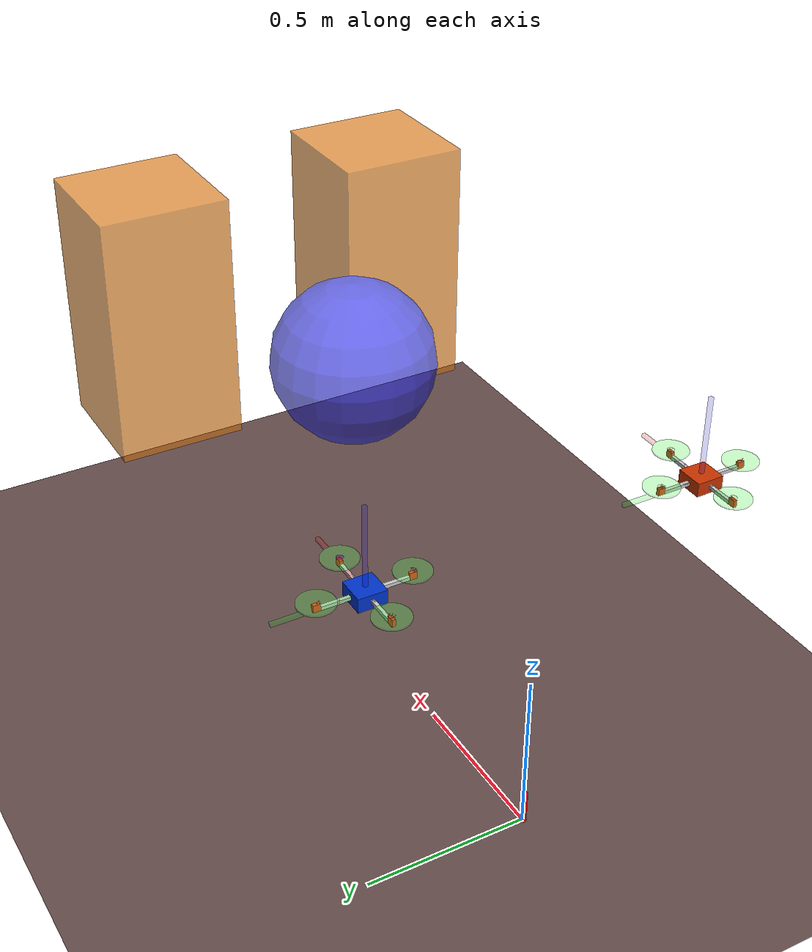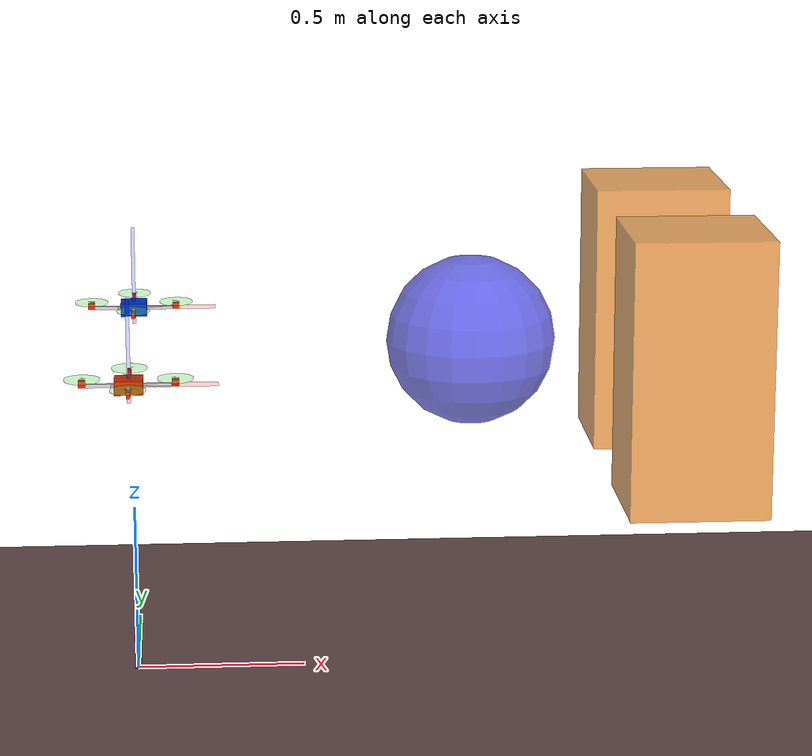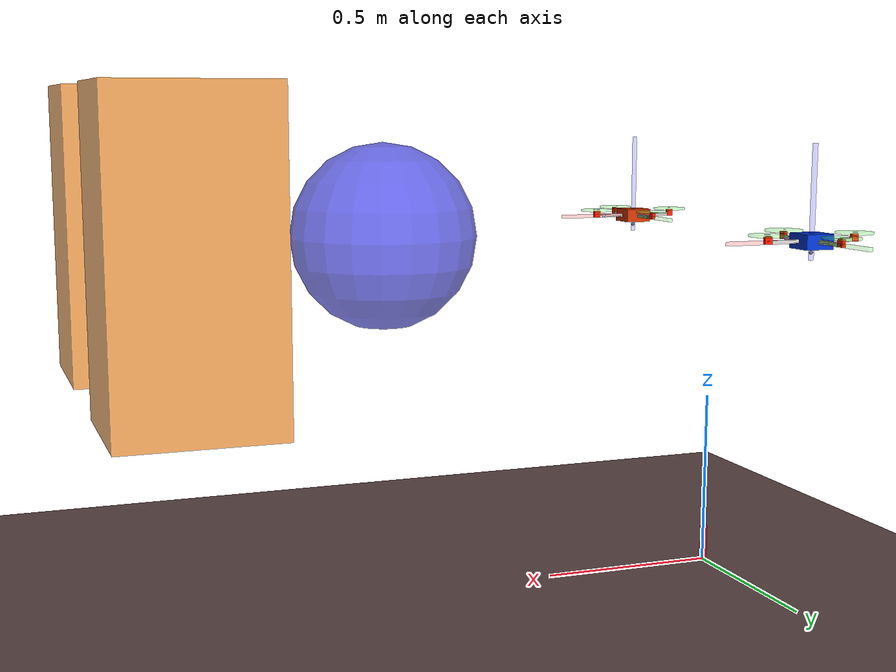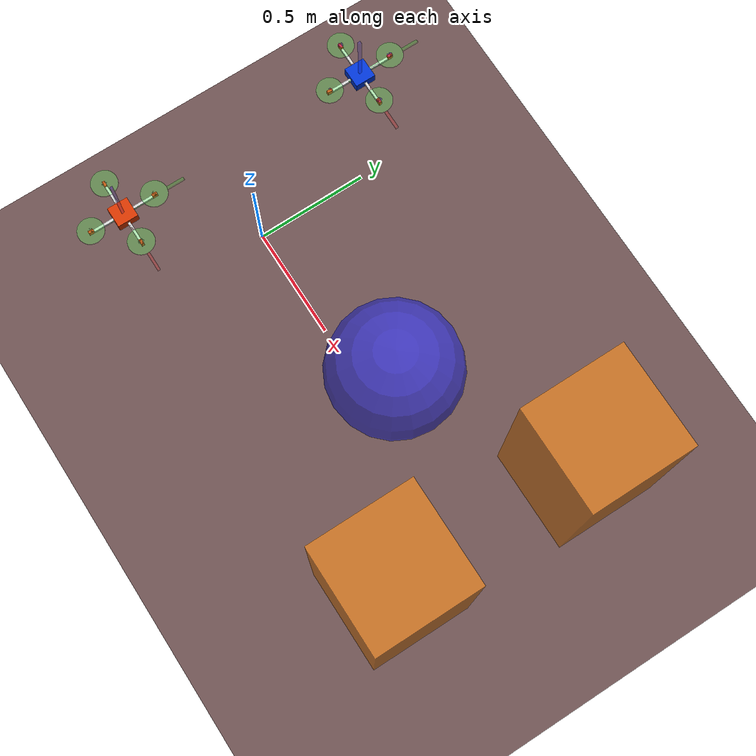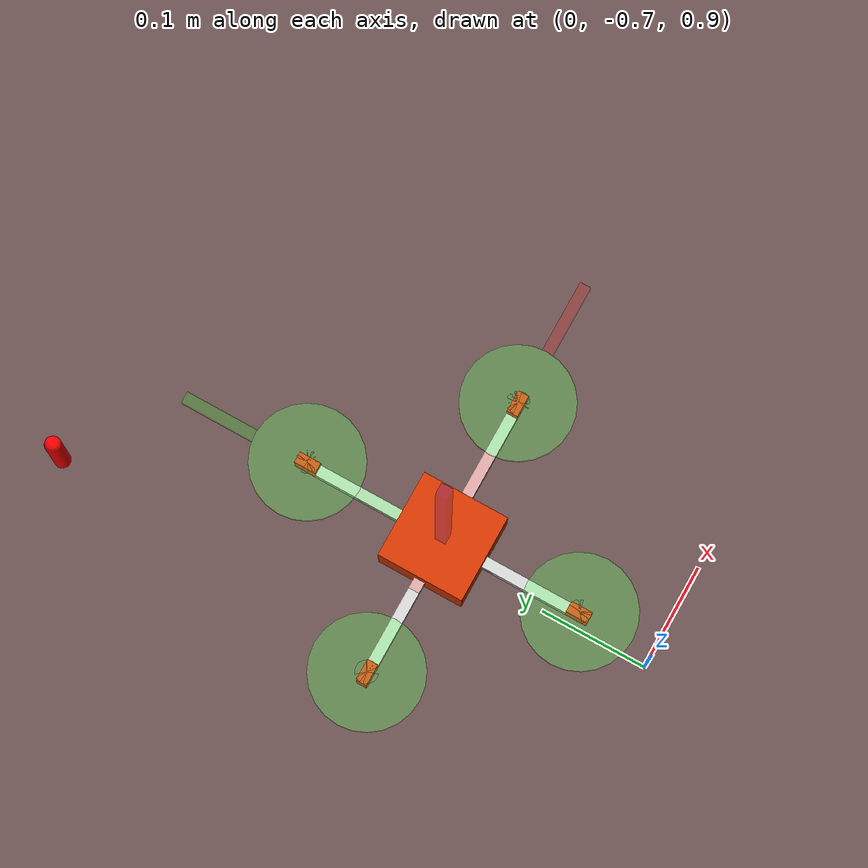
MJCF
<mujoco model="drone_3d_free_obs">
  <compiler angle="degree" inertiafromgeom="true" coordinate="local"/>
  <option timestep="0.01" gravity="0 0 -9.81" density="1" viscosity="1e-5" integrator="RK4"/>

  <default>
    <joint damping="0.02" stiffness="0.001" limited="false"/>
    <geom condim="3" density="200" friction="1 0.5 0.5" margin="0.01" rgba="0.8 0.6 0.4 1"/>
  </default>

  <asset>
    <texture builtin="gradient" type="skybox" height="100" width="100" rgb1="1 1 1" rgb2="0.6 0.8 1"/>
    <texture name="texplane" builtin="checker" height="100" width="100" rgb1="0.7 0.7 0.7" rgb2="0.9 0.9 0.9" type="2d"/>
    <material name="MatPlane" reflectance="0.3" shininess="1" specular="0.5" texrepeat="5 5" texture="texplane"/>
    <material name="MatDrone" specular="0.5" shininess="1" rgba="0.8 0.2 0.2 1"/>
  </asset>

  <worldbody>
    <light cutoff="100" diffuse="1 1 1" dir="-0 0 -1.3" directional="true" exponent="1"
           pos="0 0 1.3" specular=".1 .1 .1"/>
    <geom material="MatPlane" name="floor" pos="0 0 0" rgba="0.4 0.3 0.3 1" size="5 5 0.2" type="plane"/>

    <!-- Obstáculos (solo visuales) -->
    <!-- Esfera -->
    <geom name="obs_sphere_0" type="sphere" pos="1.0 0.0 1.0" size="0.25"
          rgba="0.2 0.2 0.9 0.7" contype="0" conaffinity="0"/>

    <!-- Caja derecha -->
    <geom name="obs_box_0" type="box" pos="1.6 0.4 1.0" size="0.20 0.20 0.40"
          rgba="0.9 0.5 0.1 0.7" contype="0" conaffinity="0"/>

    <!-- Caja izquierda -->
    <geom name="obs_box_1" type="box" pos="1.6 -0.4 1.0" size="0.20 0.20 0.40"
          rgba="0.9 0.5 0.1 0.7" contype="0" conaffinity="0"/>

    <!-- FIRST QUADROTOR 🚁 -->
    <body name="core_1" pos="0.0 -0.5 1.0">
        <geom name="core_geom_1" type="box" pos="0 0 0" quat="1 0 0 0" size=".04 .04 .02" rgba=".8 .2 0 1" mass=".1"/>
        <joint name="root_1" type="free" damping="0" armature="0" pos="0 0 0" limited="false"/>

        <!-- Site en el centro del cuerpo para aplicar wrench (u1,u2,u3,u4) -->
        <site name="com_site_1" pos="0 0 0" size="0.006" rgba="1 0 0 1"/>

        <!-- brazos y motores -->
        <geom name="arm_front0_1" type="box" pos=".08 0 0" size=".04 .005 .005" quat="1 0 0 0" rgba=".8 .8 .8 1" mass=".02"/>
        <geom name="arm_back0_1" type="box" pos="-.08 0 0" size=".04 .005 .005" quat="0 0 0 1" rgba=".8 .8 .8 1" mass=".02"/>
        <geom name="arm_left0_1" type="box" pos="0 .08 0" size=".04 .005 .005" quat=".707 0 0 .707" rgba=".8 .8 .8 1" mass=".02"/>
        <geom name="arm_right0_1" type="box" pos="0 -.08 0" size=".04 .005 .005" quat=".707 0 0 -.707" rgba=".8 .8 .8 1" mass=".02"/>

        <body name="arm_front1_1" pos=".12 0 0">
            <geom type="box" pos=".01 0 .005" size=".01 .005 .01" quat="1 0 0 0" rgba="1 .1 0 1" mass=".02"/>
            <body name="thruster0_1" pos="0.01 0 0.015">
                <geom type="cylinder" pos="0 0 .0025" size=".05 .0025" quat="1 0 0 0" rgba=".3 1 .3 0.3" mass=".005"/>
                <site name="motor0_1" type="cylinder" pos="0 0 .0025" size=".01 .0025" quat="1 0 0 0" rgba=".3 1 .3 0.3"/>
            </body>
        </body>

        <body name="arm_back1_1" pos="-.12 0 0">
            <geom type="box" pos="-.01 0 .005" size=".01 .005 .01" quat="0 0 0 1" rgba="1 .1 0 1" mass=".02"/>
            <body name="thruster1_1" pos="-0.01 0 .015">
                <geom type="cylinder" pos="0 0 .0025" size=".05 .0025" quat="1 0 0 0" rgba=".3 1 .3 0.3" mass=".005"/>
                <site name="motor1_1" type="cylinder" pos="0 0 .0025" size=".01 .0025" quat="1 0 0 0" rgba=".3 1 .3 0.3"/>
            </body>
        </body>

        <body name="arm_left1_1" pos="0 .12 0">
            <geom type="box" pos="0 .01 .005" size=".01 .005 .01" quat=".7071068 0 0 .7071068" rgba="1 .1 0 1" mass=".02"/>
            <body name="thruster2_1" pos="0 0.01 0.015">
                <geom type="cylinder" pos="0 0 .0025" size=".05 .0025" quat="1 0 0 0" rgba=".3 1 .3 0.3" mass=".005"/>
                <site name="motor2_1" type="cylinder" pos="0 0 .0025" size=".01 0.0025" quat="1 0 0 0" rgba=".3 1 .3 0.3"/>
            </body>
        </body>

        <body name="arm_right1_1" pos="0 -.12 0">
            <geom type="box" pos="0 -.01 .005" size=".01 .005 .01" quat=".7071068 0 0 -.7071068" rgba="1 .1 0 1" mass=".02"/>
            <body name="thruster3_1" pos="0 -0.01 .015">
                <geom type="cylinder" pos="0 0 .0025" size=".05 .0025" quat="1 0 0 0" rgba=".3 1 .3 0.3" mass=".005"/>
                <site type="cylinder" pos="0 0 .0025" size=".01 .0025" quat="1 0 0 0" rgba=".3 1 .3 0.3" name="motor3_1"/>
            </body>
        </body>

        <site name="x_axis_1" type="box" pos=".1 .0 .0" size=".15 .005 .005" quat="1 0 0 0" rgba="1 0 0 0.2"/>
        <site name="y_axis_1" type="box" pos=".0 .1 .0" size=".15 .005 .005" quat=".707 0 0 .707" rgba="0 1 0 0.2"/>
        <site name="z_axis_1" type="box" pos=".0 .0 .1" size=".15 .005 .005" quat="-.707 0 .707 0" rgba="0 0 1 0.2"/>

        <site name="attach_left" pos="0 0 -0.03"/>
    </body>

    <!-- SECOND QUADROTOR 🚁 -->
    <body name="core_2" pos="0.0 0.5 1.0">
        <geom name="core_geom_2" type="box" pos="0 0 0" quat="1 0 0 0" size=".04 .04 .02" rgba="0 0.2 0.8 1" mass=".1"/>
        <joint name="root_2" type="free" damping="0" armature="0" pos="0 0 0" limited="false"/>

        <!-- Site en el centro del cuerpo para aplicar wrench (u1,u2,u3,u4) -->
        <site name="com_site_2" pos="0 0 0" size="0.006" rgba="1 0 0 1"/>

        <geom name="arm_front0_2" type="box" pos=".08 0 0" size=".04 .005 .005" quat="1 0 0 0" rgba=".8 .8 .8 1" mass=".02"/>
        <geom name="arm_back0_2" type="box" pos="-.08 0 0" size=".04 .005 .005" quat="0 0 0 1" rgba=".8 .8 .8 1" mass=".02"/>
        <geom name="arm_left0_2" type="box" pos="0 .08 0" size=".04 .005 .005" quat=".707 0 0 .707" rgba=".8 .8 .8 1" mass=".02"/>
        <geom name="arm_right0_2" type="box" pos="0 -.08 0" size=".04 .005 .005" quat=".707 0 0 -.707" rgba=".8 .8 .8 1" mass=".02"/>

        <body name="arm_front1_2" pos=".12 0 0">
            <geom type="box" pos=".01 0 .005" size=".01 .005 .01" quat="1 0 0 0" rgba="1 .1 0 1" mass=".02"/>
            <body name="thruster0_2" pos="0.01 0 0.015">
                <geom type="cylinder" pos="0 0 .0025" size=".05 .0025" quat="1 0 0 0" rgba=".3 1 .3 0.3" mass=".005"/>
                <site name="motor0_2" type="cylinder" pos="0 0 .0025" size=".01 .0025" quat="1 0 0 0" rgba=".3 .3 1 0.3"/>
            </body>
        </body>

        <body name="arm_back1_2" pos="-.12 0 0">
            <geom type="box" pos="-.01 0 .005" size=".01 .005 .01" quat="0 0 0 1" rgba="1 .1 0 1" mass=".02"/>
            <body name="thruster1_2" pos="-0.01 0 .015">
                <geom type="cylinder" pos="0 0 .0025" size=".05 .0025" quat="1 0 0 0" rgba=".3 1 .3 0.3" mass=".005"/>
                <site name="motor1_2" type="cylinder" pos="0 0 .0025" size=".01 .0025" quat="1 0 0 0" rgba=".3 .3 1 0.3"/>
            </body>
        </body>

        <body name="arm_left1_2" pos="0 .12 0">
            <geom type="box" pos="0 .01 .005" size=".01 .005 .01" quat=".7071068 0 0 .7071068" rgba="1 .1 0 1" mass=".02"/>
            <body name="thruster2_2" pos="0 0.01 0.015">
                <geom type="cylinder" pos="0 0 .0025" size=".05 .0025" quat="1 0 0 0" rgba=".3 1 .3 0.3" mass=".005"/>
                <site name="motor2_2" type="cylinder" pos="0 0 .0025" size=".01 0.0025" quat="1 0 0 0" rgba=".3 .3 1 0.3"/>
            </body>
        </body>

        <body name="arm_right1_2" pos="0 -.12 0">
            <geom type="box" pos="0 -.01 .005" size=".01 .005 .01" quat=".7071068 0 0 -.7071068" rgba="1 .1 0 1" mass=".02"/>
            <body name="thruster3_2" pos="0 -0.01 .015">
                <geom type="cylinder" pos="0 0 .0025" size=".05 .0025" quat="1 0 0 0" rgba=".3 1 .3 0.3" mass=".005"/>
                <site type="cylinder" pos="0 0 .0025" size=".01 .0025" quat="1 0 0 0" rgba=".3 .3 1 0.3" name="motor3_2"/>
            </body>
        </body>

        <site name="x_axis_2" type="box" pos=".1 .0 .0" size=".15 .005 .005" quat="1 0 0 0" rgba="1 0 0 0.2"/>
        <site name="y_axis_2" type="box" pos=".0 .1 .0" size=".15 .005 .005" quat=".707 0 0 .707" rgba="0 1 0 0.2"/>
        <site name="z_axis_2" type="box" pos=".0 .0 .1" size=".15 .005 .005" quat="-.707 0 .707 0" rgba="0 0 1 0.2"/>

        <site name="attach_right" pos="0 0 -0.03"/>
    </body>

    <!-- Flecha visual 1 (mocap) para mostrar F_des1 -->
    <body name="force_arrow_1" mocap="true" pos="0 0 0">
      <geom name="force_geom_1"
            type="capsule"
            size="0.01 0.10"
            rgba="1 0 0 1"
            contype="0"
            conaffinity="0"
            mass="0"/>
    </body>

    <!-- Flecha visual 2 (mocap) para mostrar F_des2 -->
    <body name="force_arrow_2" mocap="true" pos="0 0 0">
      <geom name="force_geom_2"
            type="capsule"
            size="0.01 0.10"
            rgba="1 0 0 1"
            contype="0"
            conaffinity="0"
            mass="0"/>
    </body>

  </worldbody>

  <actuator>
      <!-- DRON 1: u1,u2,u3,u4 -->
      <general name="u1_thrust_1" site="com_site_1"
              ctrllimited="true" ctrlrange="0 10"
              gear="0 0 1  0 0 0"/>

      <general name="u2_tau_x_1" site="com_site_1"
              ctrllimited="true" ctrlrange="-1 1"
              gear="0 0 0  1 0 0"/>

      <general name="u3_tau_y_1" site="com_site_1"
              ctrllimited="true" ctrlrange="-1 1"
              gear="0 0 0  0 1 0"/>

      <general name="u4_tau_z_1" site="com_site_1"
              ctrllimited="true" ctrlrange="-0.2 0.2"
              gear="0 0 0  0 0 1"/>

      <!-- DRON 2: u1,u2,u3,u4 -->
      <general name="u1_thrust_2" site="com_site_2"
              ctrllimited="true" ctrlrange="0 10"
              gear="0 0 1  0 0 0"/>

      <general name="u2_tau_x_2" site="com_site_2"
              ctrllimited="true" ctrlrange="-1 1"
              gear="0 0 0  1 0 0"/>

      <general name="u3_tau_y_2" site="com_site_2"
              ctrllimited="true" ctrlrange="-1 1"
              gear="0 0 0  0 1 0"/>

      <general name="u4_tau_z_2" site="com_site_2"
              ctrllimited="true" ctrlrange="-0.2 0.2"
              gear="0 0 0  0 0 1"/>
  </actuator>

  <sensor>
      <!-- Primer dron -->
      <framepos  name="pos_core_1"  objtype="body" objname="core_1"/>
      <framequat name="quat_core_1" objtype="body" objname="core_1"/>

      <!-- Segundo dron -->
      <framepos  name="pos_core_2"  objtype="body" objname="core_2"/>
      <framequat name="quat_core_2" objtype="body" objname="core_2"/>
  </sensor>
</mujoco>
